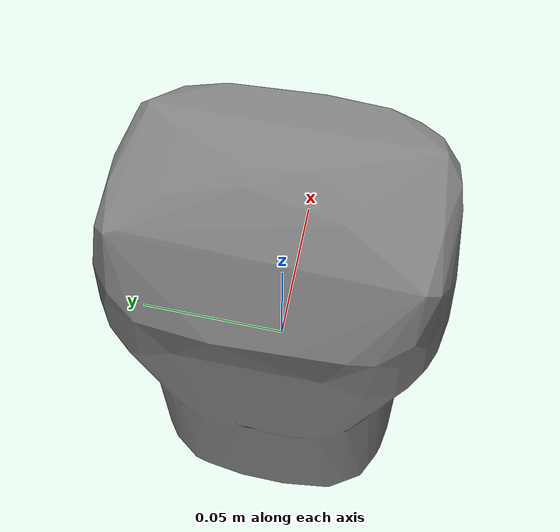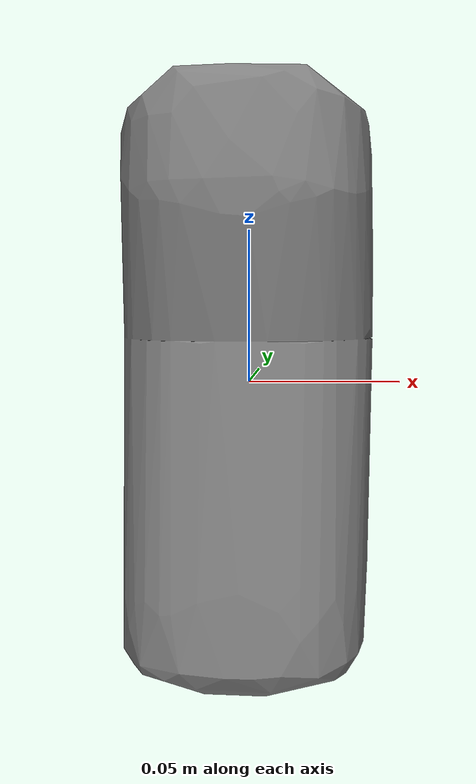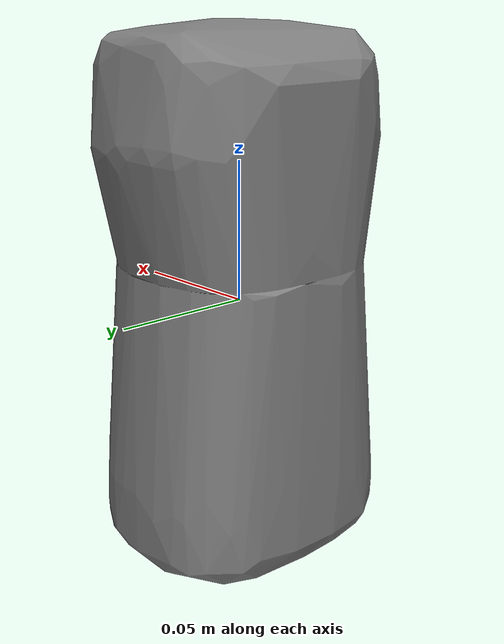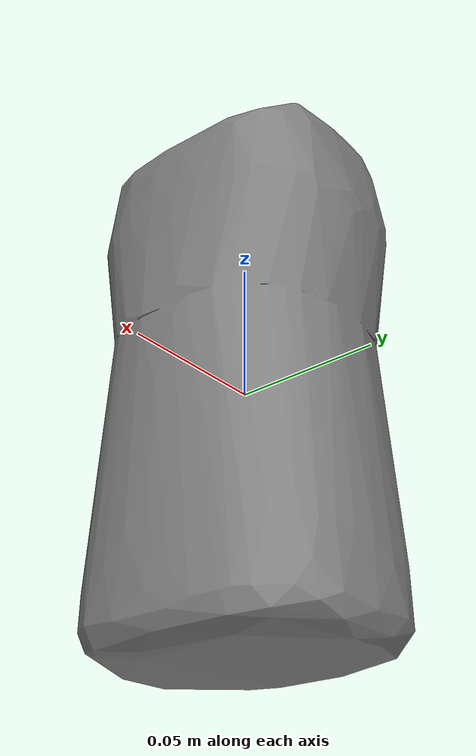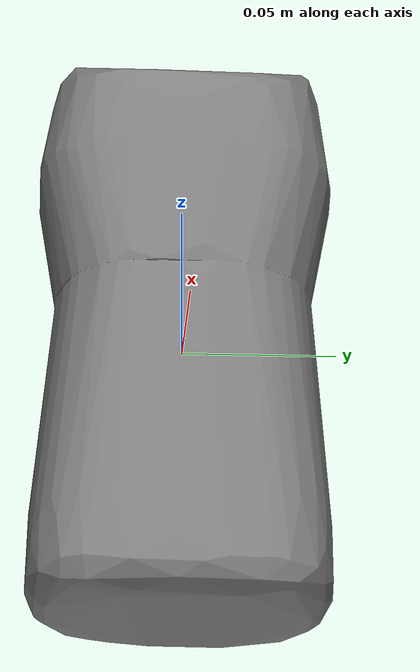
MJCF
<mujoco model="canister_Nescafe_Tasters_Choice_Instant_Coffee_Decaf_House_Blend_Light_7_oz_M">
  <default>
    <default class="visual">
      <geom group="2" type="mesh" contype="0" conaffinity="0" />
    </default>
    <default class="collision">
      <geom group="3" type="mesh" />
    </default>
  </default>
  <asset>
    <mesh file="canister_Nescafe_Tasters_Choice_Instant_Coffee_Decaf_House_Blend_Light_7_oz_M.stl" />
    <mesh file="canister_Nescafe_Tasters_Choice_Instant_Coffee_Decaf_House_Blend_Light_7_oz_M_collision_0.stl" />
    <mesh file="canister_Nescafe_Tasters_Choice_Instant_Coffee_Decaf_House_Blend_Light_7_oz_M_collision_1.stl" />
    <mesh file="canister_Nescafe_Tasters_Choice_Instant_Coffee_Decaf_House_Blend_Light_7_oz_M_collision_2.stl" />
    <mesh file="canister_Nescafe_Tasters_Choice_Instant_Coffee_Decaf_House_Blend_Light_7_oz_M_collision_3.stl" />
    <mesh file="canister_Nescafe_Tasters_Choice_Instant_Coffee_Decaf_House_Blend_Light_7_oz_M_collision_4.stl" />
    <mesh file="canister_Nescafe_Tasters_Choice_Instant_Coffee_Decaf_House_Blend_Light_7_oz_M_collision_5.stl" />
    <mesh file="canister_Nescafe_Tasters_Choice_Instant_Coffee_Decaf_House_Blend_Light_7_oz_M_collision_6.stl" />
    <mesh file="canister_Nescafe_Tasters_Choice_Instant_Coffee_Decaf_House_Blend_Light_7_oz_M_collision_7.stl" />
    <mesh file="canister_Nescafe_Tasters_Choice_Instant_Coffee_Decaf_House_Blend_Light_7_oz_M_collision_8.stl" />
    <mesh file="canister_Nescafe_Tasters_Choice_Instant_Coffee_Decaf_House_Blend_Light_7_oz_M_collision_9.stl" />
    <mesh file="canister_Nescafe_Tasters_Choice_Instant_Coffee_Decaf_House_Blend_Light_7_oz_M_collision_10.stl" />
    <mesh file="canister_Nescafe_Tasters_Choice_Instant_Coffee_Decaf_House_Blend_Light_7_oz_M_collision_11.stl" />
    <mesh file="canister_Nescafe_Tasters_Choice_Instant_Coffee_Decaf_House_Blend_Light_7_oz_M_collision_12.stl" />
    <mesh file="canister_Nescafe_Tasters_Choice_Instant_Coffee_Decaf_House_Blend_Light_7_oz_M_collision_13.stl" />
    <mesh file="canister_Nescafe_Tasters_Choice_Instant_Coffee_Decaf_House_Blend_Light_7_oz_M_collision_14.stl" />
    <mesh file="canister_Nescafe_Tasters_Choice_Instant_Coffee_Decaf_House_Blend_Light_7_oz_M_collision_15.stl" />
  </asset>
  <worldbody>
    <body name="canister_Nescafe_Tasters_Choice_Instant_Coffee_Decaf_House_Blend_Light_7_oz_M">
      <geom mesh="canister_Nescafe_Tasters_Choice_Instant_Coffee_Decaf_House_Blend_Light_7_oz_M" class="visual" />
      <geom mesh="canister_Nescafe_Tasters_Choice_Instant_Coffee_Decaf_House_Blend_Light_7_oz_M_collision_0" class="collision" />
      <geom mesh="canister_Nescafe_Tasters_Choice_Instant_Coffee_Decaf_House_Blend_Light_7_oz_M_collision_1" class="collision" />
      <geom mesh="canister_Nescafe_Tasters_Choice_Instant_Coffee_Decaf_House_Blend_Light_7_oz_M_collision_2" class="collision" />
      <geom mesh="canister_Nescafe_Tasters_Choice_Instant_Coffee_Decaf_House_Blend_Light_7_oz_M_collision_3" class="collision" />
      <geom mesh="canister_Nescafe_Tasters_Choice_Instant_Coffee_Decaf_House_Blend_Light_7_oz_M_collision_4" class="collision" />
      <geom mesh="canister_Nescafe_Tasters_Choice_Instant_Coffee_Decaf_House_Blend_Light_7_oz_M_collision_5" class="collision" />
      <geom mesh="canister_Nescafe_Tasters_Choice_Instant_Coffee_Decaf_House_Blend_Light_7_oz_M_collision_6" class="collision" />
      <geom mesh="canister_Nescafe_Tasters_Choice_Instant_Coffee_Decaf_House_Blend_Light_7_oz_M_collision_7" class="collision" />
      <geom mesh="canister_Nescafe_Tasters_Choice_Instant_Coffee_Decaf_House_Blend_Light_7_oz_M_collision_8" class="collision" />
      <geom mesh="canister_Nescafe_Tasters_Choice_Instant_Coffee_Decaf_House_Blend_Light_7_oz_M_collision_9" class="collision" />
      <geom mesh="canister_Nescafe_Tasters_Choice_Instant_Coffee_Decaf_House_Blend_Light_7_oz_M_collision_10" class="collision" />
      <geom mesh="canister_Nescafe_Tasters_Choice_Instant_Coffee_Decaf_House_Blend_Light_7_oz_M_collision_11" class="collision" />
      <geom mesh="canister_Nescafe_Tasters_Choice_Instant_Coffee_Decaf_House_Blend_Light_7_oz_M_collision_12" class="collision" />
      <geom mesh="canister_Nescafe_Tasters_Choice_Instant_Coffee_Decaf_House_Blend_Light_7_oz_M_collision_13" class="collision" />
      <geom mesh="canister_Nescafe_Tasters_Choice_Instant_Coffee_Decaf_House_Blend_Light_7_oz_M_collision_14" class="collision" />
      <geom mesh="canister_Nescafe_Tasters_Choice_Instant_Coffee_Decaf_House_Blend_Light_7_oz_M_collision_15" class="collision" />
    </body>
  </worldbody>
</mujoco>
